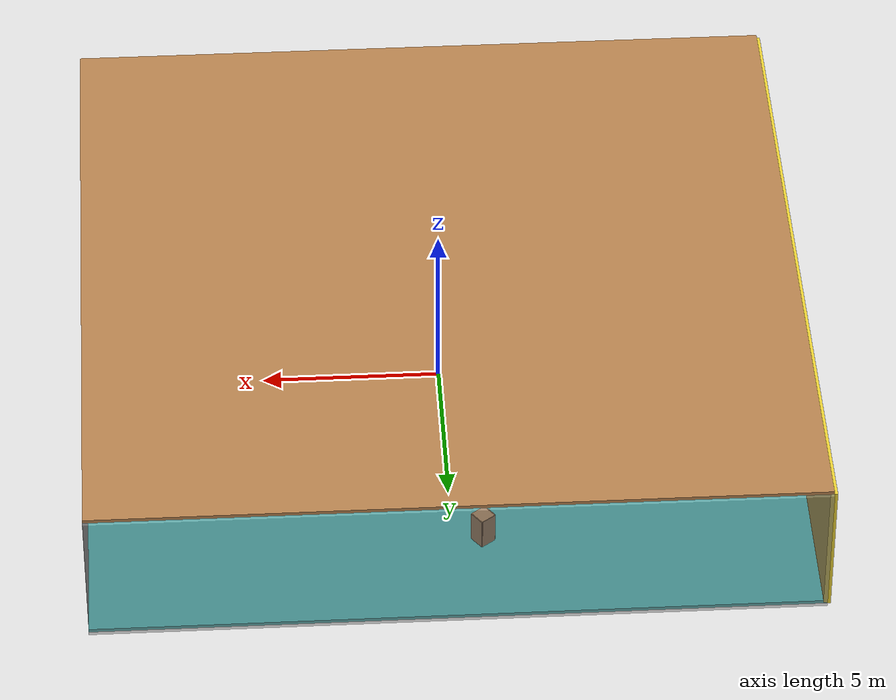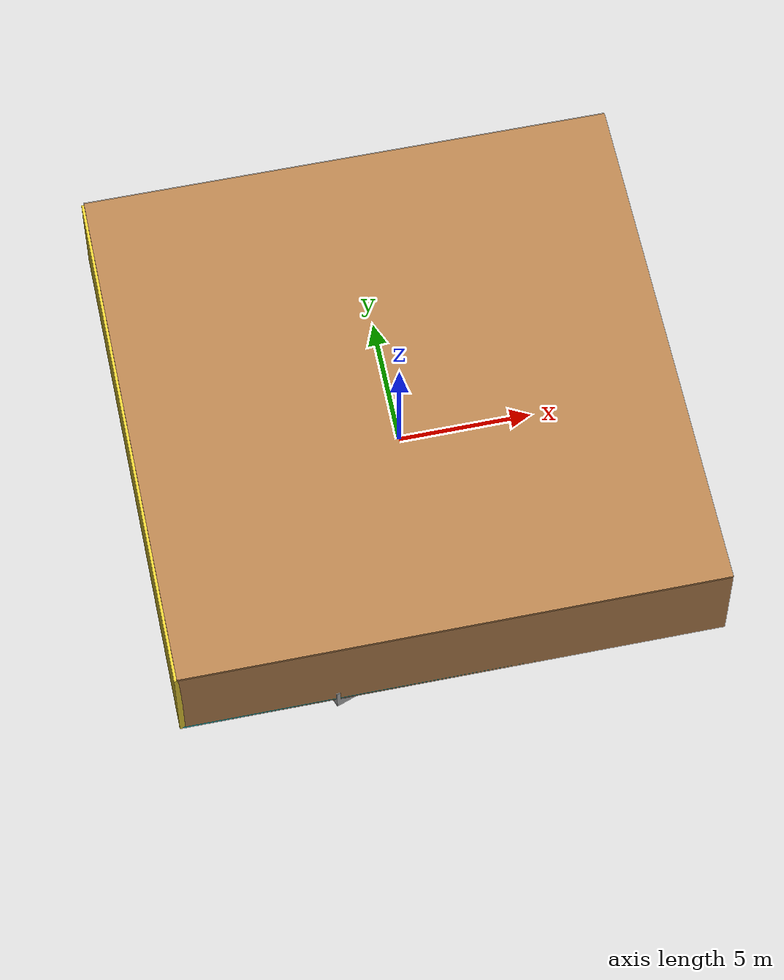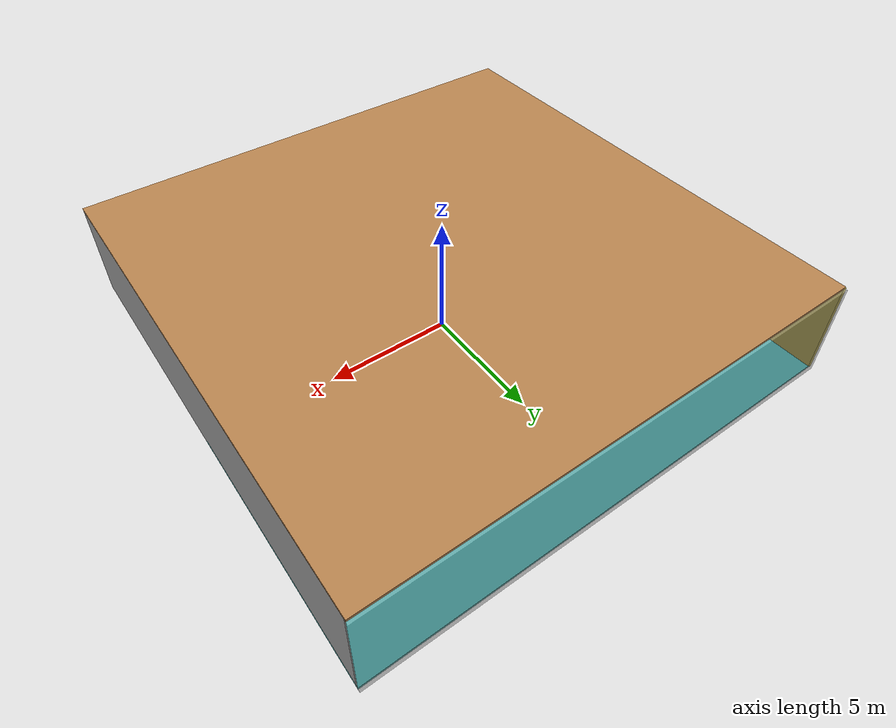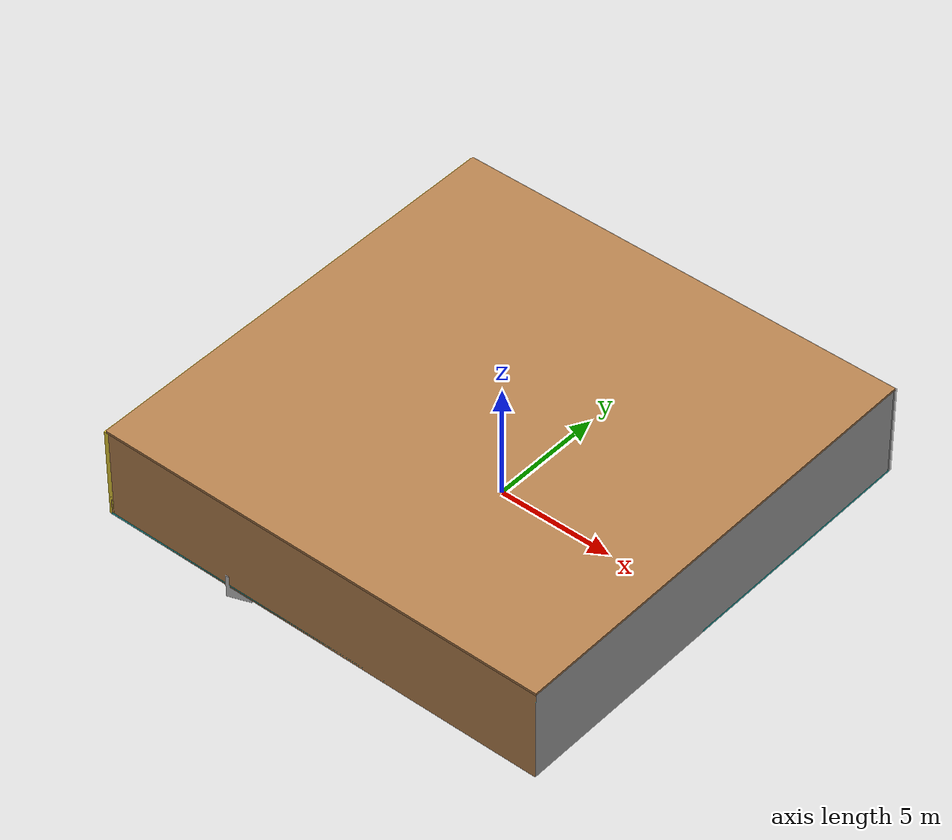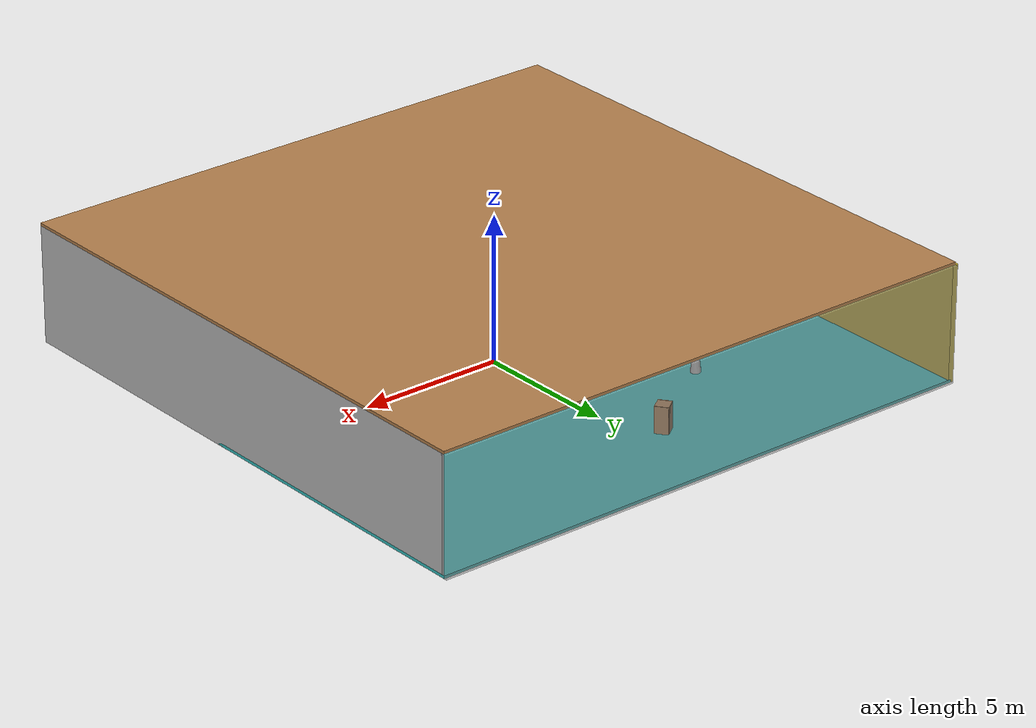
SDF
<sdf version="1.4">
 <world name="default">
  <physics type="ode">
   <max_step_size>0.001</max_step_size>
   <real_time_factor>1</real_time_factor>
   <real_time_update_rate>1000</real_time_update_rate>
   <gravity>0 0 -9.8</gravity>
  </physics>
  <scene><ambient>0.4 0.4 0.4 1</ambient><background>0.7 0.7 0.7 1</background><shadows>1</shadows></scene>
  <model name="Surrounding">
   <static>1</static>
   <link name="Ceiling">
    <collision name="Ceiling_Collision"><geometry><box><size>20 20 0.1</size></box></geometry></collision>
    <visual name="Ceiling_Visual">
     <geometry><box><size>20 20 0.1</size></box></geometry>
     <material>
      <script><uri>file://media/materials/scripts/gazebo.material</uri><name>Gazebo/Wood</name></script>
     </material>
    </visual>
    <pose>0 0 4.05 0 0 0</pose>
   </link>
   <link name="Wall_South">
    <collision name="Wall_South_Collision">
     <geometry><box><size>20 0 4</size></box></geometry>
     <pose>0 0 2 0 -0 0</pose>
    </collision>
    <visual name="Wall_South_Visual">
     <pose>0 0 2 0 -0 0</pose>
     <geometry><box><size>20 0 4</size></box></geometry>
     <material>
      <script><uri>file://media/materials/scripts/gazebo.material</uri><name>Gazebo/Wood</name></script>
     </material>
    </visual>
    <velocity_decay><linear>0</linear><angular>0</angular></velocity_decay>
    <pose>0 -10 0 0 -0 0</pose>
   </link>
   <link name="Wall_East">
    <collision name="Wall_21_Collision">
     <geometry><box><size>20 0 4</size></box></geometry>
     <pose>0 0 2 0 -0 0</pose>
    </collision>
    <visual name="Wall_21_Visual">
     <pose>0 0 2 0 -0 0</pose>
     <geometry><box><size>20 0 4</size></box></geometry>
     <material>
      <script><uri>file://media/materials/scripts/gazebo.material</uri><name>Gazebo/LightOff</name></script>
     </material>
    </visual>
    <velocity_decay><linear>0</linear><angular>0</angular></velocity_decay>
    <pose>10 0 0 0 -0 1.5708</pose>
   </link>
   <link name="Wall_North">
    <collision name="Wall_22_Collision">
     <geometry><box><size>20 0.2 4</size></box></geometry>
     <pose>0 0 2 0 -0 0</pose>
    </collision>
    <visual name="Wall_22_Visual">
     <pose>0 0 2 0 -0 0</pose>
     <geometry><box><size>20 0.2 4</size></box></geometry>
     <material>
      <script><uri>file://media/materials/scripts/gazebo.material</uri><name>Gazebo/GreyTransparent</name></script>
     </material>
    </visual>
    <velocity_decay><linear>0</linear><angular>0</angular></velocity_decay>
    <pose>0 10 0 0 -0 0</pose>
   </link>
   <link name="Wall_West">
    <collision name="Wall_23_Collision">
     <geometry><box><size>20 0.2 4</size></box></geometry>
     <pose>0 0 2 0 -0 0</pose>
    </collision>
    <visual name="Wall_23_Visual">
     <pose>0 0 2 0 -0 0</pose>
     <geometry><box><size>20 0.2 4</size></box></geometry>
     <material>
      <script><uri>file://media/materials/scripts/gazebo.material</uri><name>Gazebo/ZincYellow</name></script>
     </material>
    </visual>
    <velocity_decay><linear>0</linear><angular>0</angular></velocity_decay>
    <pose>-10 0 0 0 0 -1.5708</pose>
   </link>
   <link name="Ground_link">
    <collision name="collision">
     <pose>0 0 .05 0 -0 0</pose>
     <geometry><box><size>20 20 0.1</size></box></geometry>
    </collision>
    <visual name="visual">
     <pose>0 0 .05 0 -0 0</pose>
     <geometry><box><size>20 20 0.1</size></box></geometry>
     <material>
      <script>
       <uri>file://media/materials/scripts/gazebo.material</uri>
       <name>Gazebo/TurquoiseGlowOutline</name>
      </script>
     </material>
    </visual>
   </link>
   <static>1</static>
  </model>
  <spherical_coordinates>
   <surface_model>EARTH_WGS84</surface_model>
   <latitude_deg>0</latitude_deg>
   <longitude_deg>0</longitude_deg>
   <elevation>0</elevation>
   <heading_deg>0</heading_deg>
  </spherical_coordinates>
  <light name="lightball_0" type="diffuse">
   <diffuse>0.8 0.8 0.8 1</diffuse>
   <specular>0.2 0.2 0.2 1</specular>
   <attenuation>
    <range>100</range>
    <constant>0.7</constant>
    <linear>0.01</linear>
    <quadratic>0.001</quadratic>
   </attenuation>
   <direction>-0.5 0.1 -0.9</direction>
   <pose>-5.01782536145 4.58487865447 3.57126113069 0 0 0</pose>
  </light>
  <light name="lightball_1" type="diffuse">
   <diffuse>0.8 0.8 0.8 1</diffuse>
   <specular>0.2 0.2 0.2 1</specular>
   <attenuation>
    <range>100</range>
    <constant>0.7</constant>
    <linear>0.01</linear>
    <quadratic>0.001</quadratic>
   </attenuation>
   <direction>-0.5 0.1 -0.9</direction>
   <pose>-6.70179607345 -3.23122500113 3.15237600518 0 0 0</pose>
  </light>
  <light name="lightball_2" type="diffuse">
   <diffuse>0.8 0.8 0.8 1</diffuse>
   <specular>0.2 0.2 0.2 1</specular>
   <attenuation>
    <range>100</range>
    <constant>0.7</constant>
    <linear>0.01</linear>
    <quadratic>0.001</quadratic>
   </attenuation>
   <direction>-0.5 0.1 -0.9</direction>
   <pose>-5.49483950206 7.33072437977 0.641168272953 0 0 0</pose>
  </light>
  <light name="lightball_3" type="diffuse">
   <diffuse>0.8 0.8 0.8 1</diffuse>
   <specular>0.2 0.2 0.2 1</specular>
   <attenuation>
    <range>100</range>
    <constant>0.7</constant>
    <linear>0.01</linear>
    <quadratic>0.001</quadratic>
   </attenuation>
   <direction>-0.5 0.1 -0.9</direction>
   <pose>-3.89972751149 -2.75036075134 1.57105669217 0 0 0</pose>
  </light>
  <light name="lightball_4" type="diffuse">
   <diffuse>0.8 0.8 0.8 1</diffuse>
   <specular>0.2 0.2 0.2 1</specular>
   <attenuation>
    <range>100</range>
    <constant>0.7</constant>
    <linear>0.01</linear>
    <quadratic>0.001</quadratic>
   </attenuation>
   <direction>-0.5 0.1 -0.9</direction>
   <pose>-0.0514393424579 -8.63951641843 2.7385178672 0 0 0</pose>
  </light>
  <light name="lightball_5" type="diffuse">
   <diffuse>0.8 0.8 0.8 1</diffuse>
   <specular>0.2 0.2 0.2 1</specular>
   <attenuation>
    <range>100</range>
    <constant>0.7</constant>
    <linear>0.01</linear>
    <quadratic>0.001</quadratic>
   </attenuation>
   <direction>-0.5 0.1 -0.9</direction>
   <pose>-6.60863812574 -1.83093839645 3.01690200591 0 0 0</pose>
  </light>
  <light name="lightball_6" type="diffuse">
   <diffuse>0.8 0.8 0.8 1</diffuse>
   <specular>0.2 0.2 0.2 1</specular>
   <attenuation>
    <range>100</range>
    <constant>0.7</constant>
    <linear>0.01</linear>
    <quadratic>0.001</quadratic>
   </attenuation>
   <direction>-0.5 0.1 -0.9</direction>
   <pose>-3.75495099514 9.93575907829 2.32821310828 0 0 0</pose>
  </light>
  <include><uri>model://cabinet</uri><pose>-7.99355458222 -1.25288129281 0 0 0 2.35034345887</pose></include>
  <include>
   <uri>model://textured_shapes</uri>
   <pose>-4.5772034585 -7.99995700162 0 0 0 0.347419953408</pose>
  </include>
  <include>
   <uri>model://robocup_3Dsim_goal</uri>
   <pose>-4.617977322 2.11594294376 0 0 0 0.485432373194</pose>
  </include>
  <include>
   <uri>model://construction_cone</uri>
   <pose>-4.2636849767 4.62188442304 0 0 0 1.64631172785</pose>
  </include>
  <include><uri>model://table</uri><pose>-1.12006831221 -5.02661542145 0 0 0 1.60655074886</pose></include>
  <include><uri>model://cabinet</uri><pose>-0.834760141473 7.03456360504 0 0 0 2.20223236985</pose></include>
  <include><uri>model://cabinet</uri><pose>4.79926194974 -1.9911112306 0 0 0 2.22960949793</pose></include>
  <include>
   <uri>model://robocup_3Dsim_goal</uri>
   <pose>4.71576118241 1.66264908487 0 0 0 0.349812233018</pose>
  </include>
  <include><uri>model://table</uri><pose>7.25071459309 4.04242091508 0 0 0 1.29099095749</pose></include>
 </world>
</sdf>

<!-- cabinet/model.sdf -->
<sdf version="1.5">
  <model name="cabinet">
    <static>true</static>
    <link name="cabinet_bottom_plate">
      <inertial>
        <pose>0 0 -1 0 0 0</pose>
        <inertia>
          <ixx>2.050000</ixx>
          <ixy>0</ixy>
          <ixz>0</ixz>
          <iyy>2.050000</iyy>
          <iyz>0</iyz>
          <izz>2.050000</izz>
        </inertia>
        <mass>25.000000</mass>
      </inertial>
      <collision name="cabinet_bottom_plate_geom">
        <pose>0 0 0.010000 0 0 0</pose>
        <geometry>
          <box>
            <size>0.450000 0.450000 0.020000</size>
          </box>
        </geometry>
      </collision>
      <visual name="cabinet_bottom_plate_geom_visual">
        <pose>0 0 0.010000 0 0 0</pose>
        <geometry>
          <box>
            <size>0.450000 0.450000 0.020000</size>
          </box>
        </geometry>
        <material>
          <script>
            <uri>model://media/materials/scripts/gazebo.material</uri>
            <name>Gazebo/Wood</name>
          </script>
        </material>
      </visual>
      <collision name="cabinet_bottom_plate_geom_cabinet_back_plate">
        <pose>0.235000 0 0.510000 0 0 0</pose>
        <geometry>
          <box>
            <size>0.020000 0.450000 1.020000</size>
          </box>
        </geometry>
      </collision>
      <visual name="cabinet_bottom_plate_geom_cabinet_back_plate_visual">
        <pose>0.235000 0 0.510000 0 0 0</pose>
        <geometry>
          <box>
            <size>0.020000 0.450000 1.020000</size>
          </box>
        </geometry>
        <material>
          <script>
            <uri>model://media/materials/scripts/gazebo.material</uri>
            <name>Gazebo/Wood</name>
          </script>
        </material>
      </visual>
      <collision name="cabinet_bottom_plate_geom_cabinet_left_plate">
        <pose>0 0.235000 0.510000 0 0 0</pose>
        <geometry>
          <box>
            <size>0.450000 0.020000 1.020000</size>
          </box>
        </geometry>
      </collision>
      <visual name="cabinet_bottom_plate_geom_cabinet_left_plate_visual">
        <pose>0 0.235000 0.510000 0 0 0</pose>
        <geometry>
          <box>
            <size>0.450000 0.020000 1.020000</size>
          </box>
        </geometry>
        <material>
          <script>
            <uri>model://media/materials/scripts/gazebo.material</uri>
            <name>Gazebo/Wood</name>
          </script>
        </material>
      </visual>
      <collision name="cabinet_bottom_plate_geom_cabinet_middle_plate">
        <pose>0 0 0.510000 0 0 0</pose>
        <geometry>
          <box>
            <size>0.450000 0.450000 0.020000</size>
          </box>
        </geometry>
      </collision>
      <visual name="cabinet_bottom_plate_geom_cabinet_middle_plate_visual">
        <pose>0 0 0.510000 0 0 0</pose>
        <geometry>
          <box>
            <size>0.450000 0.450000 0.020000</size>
          </box>
        </geometry>
        <material>
          <script>
            <uri>model://media/materials/scripts/gazebo.material</uri>
            <name>Gazebo/Wood</name>
          </script>
        </material>
      </visual>
      <collision name="cabinet_bottom_plate_geom_cabinet_right_plate">
        <pose>0 -0.235000 0.510000 0 0 0</pose>
        <geometry>
          <box>
            <size>0.450000 0.020000 1.020000</size>
          </box>
        </geometry>
      </collision>
      <visual name="cabinet_bottom_plate_geom_cabinet_right_plate_visual">
        <pose>0 -0.235000 0.510000 0 0 0</pose>
        <geometry>
          <box>
            <size>0.450000 0.020000 1.020000</size>
          </box>
        </geometry>
        <material>
          <script>
            <uri>model://media/materials/scripts/gazebo.material</uri>
            <name>Gazebo/Wood</name>
          </script>
        </material>
      </visual>
      <collision name="cabinet_bottom_plate_geom_cabinet_top_plate">
        <pose>0 0 1.010000 0 0 0</pose>
        <geometry>
          <box>
            <size>0.450000 0.450000 0.020000</size>
          </box>
        </geometry>
      </collision>
      <visual name="cabinet_bottom_plate_geom_cabinet_top_plate_visual">
        <pose>0 0 1.010000 0 0 0</pose>
        <geometry>
          <box>
            <size>0.450000 0.450000 0.020000</size>
          </box>
        </geometry>
        <material>
          <script>
            <uri>model://media/materials/scripts/gazebo.material</uri>
            <name>Gazebo/Wood</name>
          </script>
        </material>
      </visual>
    </link>
  </model>
</sdf>

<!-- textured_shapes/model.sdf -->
<sdf version="1.6">
  <model name="textured_shapes">
    <pose>0 0 0.5 0 0 0</pose>
    <link name="box">
      <pose>0 -1.5 0 0 0 0</pose>
      <collision name="collision">
        <geometry>
          <box>
            <size>1 1 1</size>
          </box>
        </geometry>
      </collision>
      <visual name="visual">
        <geometry>
          <box>
            <size>1 1 1</size>
          </box>
        </geometry>
        <material>
          <script>
            <uri>model://../model_source/models/textured_shapes/materials/scripts</uri>
            <uri>model://../model_source/models/textured_shapes/materials/textures</uri>
            <name>TexturedShape/Squares</name>
          </script>
        </material>
      </visual>
    </link>
    <link name="sphere">
      <collision name="collision">
        <geometry>
          <sphere>
            <radius>0.5</radius>
          </sphere>
        </geometry>
      </collision>
      <visual name="visual">
        <geometry>
          <sphere>
            <radius>0.5</radius>
          </sphere>
        </geometry>
        <material>
          <script>
            <uri>model://../model_source/models/textured_shapes/materials/scripts</uri>
            <uri>model://../model_source/models/textured_shapes/materials/textures</uri>
            <name>TexturedShape/Squares</name>
          </script>
        </material>
      </visual>
    </link>
    <link name="cylinder">
      <pose>0 1.5 0 0 0 0</pose>
      <collision name="collision">
        <geometry>
          <cylinder>
            <radius>0.5</radius>
            <length>1</length>
          </cylinder>
        </geometry>
      </collision>
      <visual name="visual">
        <geometry>
          <cylinder>
            <radius>0.5</radius>
            <length>1</length>
          </cylinder>
        </geometry>
        <material>
          <script>
            <uri>model://../model_source/models/textured_shapes/materials/scripts</uri>
            <uri>model://../model_source/models/textured_shapes/materials/textures</uri>
            <name>TexturedShape/Squares</name>
          </script>
        </material>
      </visual>
    </link>
  </model>
</sdf>

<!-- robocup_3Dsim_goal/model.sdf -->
<sdf version="1.5">
  <model name="robocup_3d_goal">
    <static>true</static>
    <link name="left_post">
      <pose>0 1.05 0.45 0 0 0</pose>
      <collision name="collision">
        <geometry>
          <cylinder>
            <radius>0.05</radius>
            <length>0.9</length>
          </cylinder>
        </geometry>
      </collision>
      <visual name="visual">
        <geometry>
          <cylinder>
            <radius>0.05</radius>
            <length>0.9</length>
          </cylinder>
        </geometry>
        <material>
          <script>
            <uri>file://media/materials/scripts/gazebo.material</uri>
            <name>Gazebo/ZincYellow</name>
          </script>
        </material>
      </visual>
    </link>
    <link name="left_support_horiz_lower">
      <pose>0.30 1.05 0.01 0 0 0</pose>
      <collision name="collision">
        <geometry>
          <box>
            <size>0.50 0.02 0.02</size>
          </box>
        </geometry>
      </collision>
      <visual name="visual">
        <geometry>
          <box>
            <size>0.50 0.02 0.02</size>
          </box>
        </geometry>
        <material>
          <script>
            <uri>file://media/materials/scripts/gazebo.material</uri>
            <name>Gazebo/White</name>
          </script>
        </material>
      </visual>
    </link>
    <link name="left_support_horiz_upper">
      <pose>0.30 1.05 0.79 0 0 0</pose>
      <collision name="collision">
        <geometry>
          <box>
            <size>0.50 0.02 0.02</size>
          </box>
        </geometry>
      </collision>
      <visual name="visual">
        <geometry>
          <box>
            <size>0.50 0.02 0.02</size>
          </box>
        </geometry>
        <material>
          <script>
            <uri>file://media/materials/scripts/gazebo.material</uri>
            <name>Gazebo/White</name>
          </script>
        </material>
      </visual>
    </link>
    <link name="left_support_vertical">
      <pose>0.56 1.05 0.4 0 1.5708 0</pose>
      <collision name="collision">
        <geometry>
          <box>
            <size>0.80 0.02 0.02</size>
          </box>
        </geometry>
      </collision>
      <visual name="visual">
        <geometry>
          <box>
            <size>0.80 0.02 0.02</size>
          </box>
        </geometry>
        <material>
          <script>
            <uri>file://media/materials/scripts/gazebo.material</uri>
            <name>Gazebo/White</name>
          </script>
        </material>
      </visual>
    </link>
    <link name="right_support_horiz_lower">
      <pose>0.30 -1.05 0.01 0 0 0</pose>
      <collision name="collision">
        <geometry>
          <box>
            <size>0.50 0.02 0.02</size>
          </box>
        </geometry>
      </collision>
      <visual name="visual">
        <geometry>
          <box>
            <size>0.50 0.02 0.02</size>
          </box>
        </geometry>
        <material>
          <script>
            <uri>file://media/materials/scripts/gazebo.material</uri>
            <name>Gazebo/White</name>
          </script>
        </material>
      </visual>
    </link>
    <link name="right_support_horiz_upper">
      <pose>0.30 -1.05 0.79 0 0 0</pose>
      <collision name="collision">
        <geometry>
          <box>
            <size>0.50 0.02 0.02</size>
          </box>
        </geometry>
      </collision>
      <visual name="visual">
        <geometry>
          <box>
            <size>0.50 0.02 0.02</size>
          </box>
        </geometry>
        <material>
          <script>
            <uri>file://media/materials/scripts/gazebo.material</uri>
            <name>Gazebo/White</name>
          </script>
        </material>
      </visual>
    </link>
    <link name="right_support_vertical">
      <pose>0.56 -1.05 0.4 0 1.5708 0</pose>
      <collision name="collision">
        <geometry>
          <box>
            <size>0.80 0.02 0.02</size>
          </box>
        </geometry>
      </collision>
      <visual name="visual">
        <geometry>
          <box>
            <size>0.80 0.02 0.02</size>
          </box>
        </geometry>
        <material>
          <script>
            <uri>file://media/materials/scripts/gazebo.material</uri>
            <name>Gazebo/White</name>
          </script>
        </material>
      </visual>
    </link>
    <link name="center_support_horiz_lower">
      <pose>0.56 0 0.01 0 1.5708 0</pose>
      <collision name="collision">
        <geometry>
          <box>
            <size>0.02 2.08 0.02</size>
          </box>
        </geometry>
      </collision>
      <visual name="visual">
        <geometry>
          <box>
            <size>0.02 2.08 0.02</size>
          </box>
        </geometry>
        <material>
          <script>
            <uri>file://media/materials/scripts/gazebo.material</uri>
            <name>Gazebo/White</name>
          </script>
        </material>
      </visual>
    </link>
    <link name="center_support_horiz_upper">
      <pose>0.56 0 0.79 0 1.5708 0</pose>
      <collision name="collision">
        <geometry>
          <box>
            <size>0.02 2.08 0.02</size>
          </box>
        </geometry>
      </collision>
      <visual name="visual">
        <geometry>
          <box>
            <size>0.02 2.08 0.02</size>
          </box>
        </geometry>
        <material>
          <script>
            <uri>file://media/materials/scripts/gazebo.material</uri>
            <name>Gazebo/White</name>
          </script>
        </material>
      </visual>
    </link>
    <link name="right_post">
      <pose>0 -1.05 0.45 0 0 0</pose>
      <collision name="collision">
        <geometry>
          <cylinder>
            <radius>0.05</radius>
            <length>0.9</length>
          </cylinder>
        </geometry>
      </collision>
      <visual name="visual">
        <geometry>
          <cylinder>
            <radius>0.05</radius>
            <length>0.9</length>
          </cylinder>
        </geometry>
        <material>
          <script>
            <uri>file://media/materials/scripts/gazebo.material</uri>
            <name>Gazebo/ZincYellow</name>
          </script>
        </material>
      </visual>
    </link>
    <link name="crossbar">
      <pose>0 0 0.85 1.57 1.57 0</pose>
      <collision name="collision">
        <geometry>
          <cylinder>
            <radius>0.05</radius>
            <length>2.0</length>
          </cylinder>
        </geometry>
      </collision>
      <visual name="visual">
        <geometry>
          <cylinder>
            <radius>0.05</radius>
            <length>2.0</length>
          </cylinder>
        </geometry>
        <material>
          <script>
            <uri>file://media/materials/scripts/gazebo.material</uri>
            <name>Gazebo/ZincYellow</name>
          </script>
        </material>
      </visual>
    </link>
    <link name="center_net">
      <pose>0.56 0 0.40 0 0 0</pose>
      <collision name="collision">
        <geometry>
          <box>
            <size>0.01 2.1 0.80</size>
          </box>
        </geometry>
      </collision>
      <visual name="visual">
        <geometry>
          <box>
            <size>0.01 2.1 0.80</size>
          </box>
        </geometry>
        <material>
          <script>
            <uri>model://../model_source/models/robocup09_spl_field/materials/scripts/</uri>
            <uri>model://../model_source/models/robocup09_spl_field/materials/textures/</uri>
            <name>RoboCup/Net</name>
          </script>
        </material>
      </visual>
    </link>
    <link name="left_net">
      <pose>0.30 1.05 0.40 0 0 0</pose>
      <collision name="collision">
        <geometry>
          <box>
            <size>0.50 0.01 0.76</size>
          </box>
        </geometry>
      </collision>
      <visual name="visual">
        <geometry>
          <box>
            <size>0.50 0.01 0.76</size>
          </box>
        </geometry>
        <material>
          <script>
            <uri>model://../model_source/models/robocup09_spl_field/materials/scripts/</uri>
            <uri>model://../model_source/models/robocup09_spl_field/materials/textures/</uri>
            <name>RoboCup/Net</name>
          </script>
        </material>
      </visual>
    </link>
    <link name="right_net">
      <pose>0.30 -1.05 0.40 0 0 0</pose>
      <collision name="collision">
        <geometry>
          <box>
            <size>0.50 0.01 0.76</size>
          </box>
        </geometry>
      </collision>
      <visual name="visual">
        <geometry>
          <box>
            <size>0.50 0.01 0.76</size>
          </box>
        </geometry>
        <material>
          <script>
            <uri>model://../model_source/models/robocup09_spl_field/materials/scripts/</uri>
            <uri>model://../model_source/models/robocup09_spl_field/materials/textures/</uri>
            <name>RoboCup/Net</name>
          </script>
        </material>
      </visual>
    </link>
  </model>
</sdf>

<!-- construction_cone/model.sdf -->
<sdf version="1.5">
  <model name="Construction Cone">
    <link name="link">
      <collision name="collision">
        <geometry>
          <mesh>
            <scale>10 10 10</scale>
            <uri>file://isr-testbed/construction_cone/meshes/construction_cone.dae</uri>
          </mesh>
        </geometry>
      </collision>
      <visual name="visual">
        <geometry>
          <mesh>
            <scale>10 10 10</scale>
            <uri>file://isr-testbed/construction_cone/meshes/construction_cone.dae</uri>
          </mesh>
        </geometry>
      </visual>
    </link>
  </model>
</sdf>

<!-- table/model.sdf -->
<sdf version="1.5">
  <model name="table">
    <static>true</static>
    <link name="link">
      <collision name="surface">
        <pose>0 0 1.0 0 0 0</pose>
        <geometry>
          <box>
            <size>1.5 0.8 0.03</size>
          </box>
        </geometry>
        <surface>
          <friction>
            <ode>
              <mu>0.6</mu>
              <mu2>0.6</mu2>
            </ode>
          </friction>
        </surface>
      </collision>
      <visual name="visual1">
        <pose>0 0 1.0 0 0 0</pose>
        <geometry>
          <box>
            <size>1.5 0.8 0.03</size>
          </box>
        </geometry>
        <material>
          <script>
            <uri>model://media/materials/scripts/gazebo.material</uri>
            <name>Gazebo/Wood</name>
          </script>
        </material>
      </visual>
      <collision name="front_left_leg">
        <pose>0.68 0.38 0.5 0 0 0</pose>
        <geometry>
          <cylinder>
            <radius>0.02</radius>
            <length>1.0</length>
          </cylinder>
        </geometry>
      </collision>
      <visual name="front_left_leg">
        <pose>0.68 0.38 0.5 0 0 0</pose>
        <geometry>
          <cylinder>
            <radius>0.02</radius>
            <length>1.0</length>
          </cylinder>
        </geometry>
        <material>
          <script>
            <uri>model://media/materials/scripts/gazebo.material</uri>
            <name>Gazebo/Grey</name>
          </script>
        </material>
      </visual>
      <collision name="front_right_leg">
        <pose>0.68 -0.38 0.5 0 0 0</pose>
        <geometry>
          <cylinder>
            <radius>0.02</radius>
            <length>1.0</length>
          </cylinder>
        </geometry>
      </collision>
      <visual name="front_right_leg">
        <pose>0.68 -0.38 0.5 0 0 0</pose>
        <geometry>
          <cylinder>
            <radius>0.02</radius>
            <length>1.0</length>
          </cylinder>
        </geometry>
        <material>
          <script>
            <uri>model://media/materials/scripts/gazebo.material</uri>
            <name>Gazebo/Grey</name>
          </script>
        </material>
      </visual>
      <collision name="back_right_leg">
        <pose>-0.68 -0.38 0.5 0 0 0</pose>
        <geometry>
          <cylinder>
            <radius>0.02</radius>
            <length>1.0</length>
          </cylinder>
        </geometry>
      </collision>
      <visual name="back_right_leg">
        <pose>-0.68 -0.38 0.5 0 0 0</pose>
        <geometry>
          <cylinder>
            <radius>0.02</radius>
            <length>1.0</length>
          </cylinder>
        </geometry>
        <material>
          <script>
            <uri>model://media/materials/scripts/gazebo.material</uri>
            <name>Gazebo/Grey</name>
          </script>
        </material>
      </visual>
      <collision name="back_left_leg">
        <pose>-0.68 0.38 0.5 0 0 0</pose>
        <geometry>
          <cylinder>
            <radius>0.02</radius>
            <length>1.0</length>
          </cylinder>
        </geometry>
      </collision>
      <visual name="back_left_leg">
        <pose>-0.68 0.38 0.5 0 0 0</pose>
        <geometry>
          <cylinder>
            <radius>0.02</radius>
            <length>1.0</length>
          </cylinder>
        </geometry>
        <material>
          <script>
            <uri>model://media/materials/scripts/gazebo.material</uri>
            <name>Gazebo/Grey</name>
          </script>
        </material>
      </visual>
    </link>
  </model>
</sdf>
